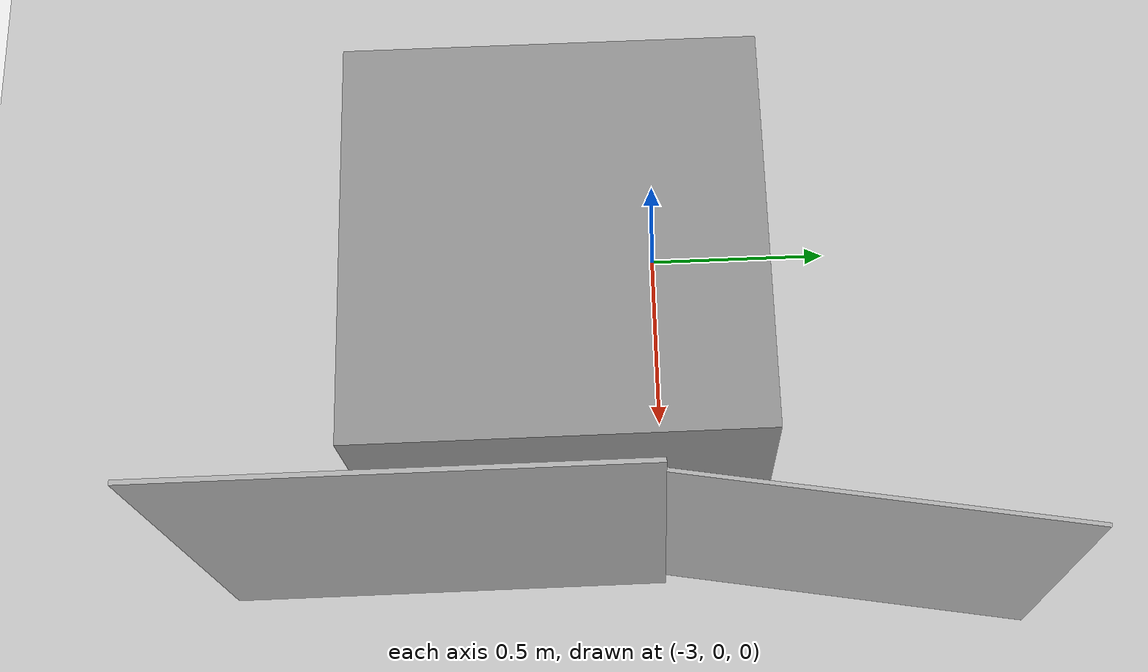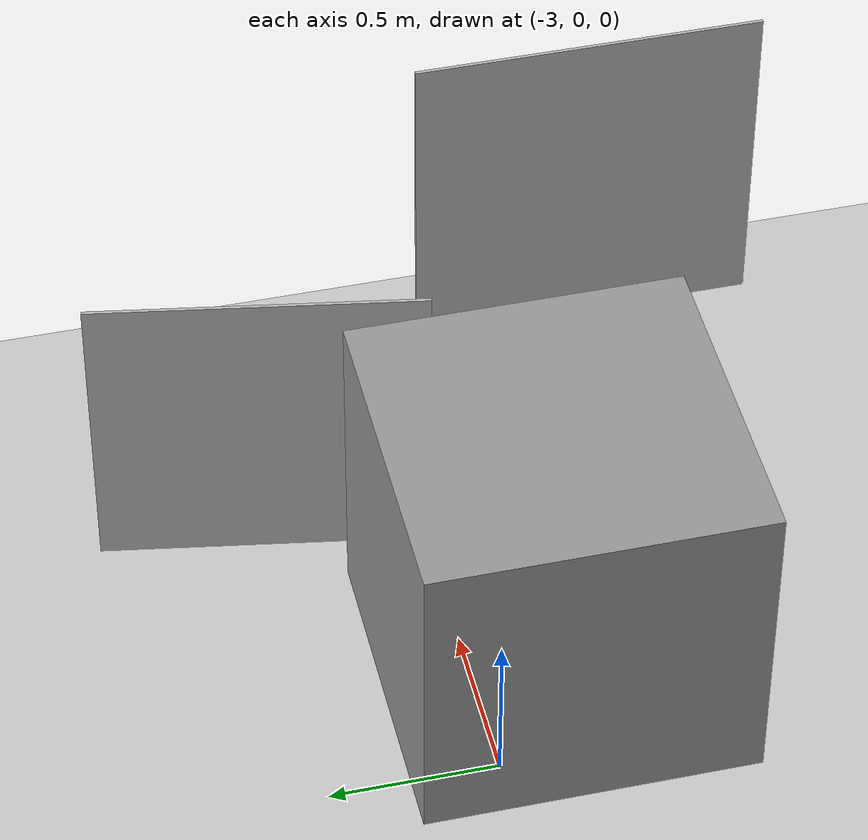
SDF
<sdf version="1.6">
 <world name="default">
  <light name="sun" type="directional">
   <pose>0 0 10 0 -0 0</pose>
   <diffuse>0.8 0.8 0.8 1</diffuse>
   <specular>0.2 0.2 0.2 1</specular>
   <attenuation>
    <range>1000</range>
    <constant>0.9</constant>
    <linear>0.01</linear>
    <quadratic>0.001</quadratic>
   </attenuation>
   <direction>-0.5 0.1 -0.9</direction>
  </light>
  <model name="ground_plane">
   <static>1</static>
   <link name="link">
    <collision name="collision">
     <geometry><plane><normal>0 0 1</normal><size>100 100</size></plane></geometry>
     <surface>
      <contact><collide_bitmask>65535</collide_bitmask></contact>
      <friction><ode><mu>100</mu><mu2>50</mu2></ode></friction>
     </surface>
    </collision>
    <visual name="visual">
     <cast_shadows>0</cast_shadows>
     <geometry><plane><normal>0 0 1</normal><size>100 100</size></plane></geometry>
     <material>
      <script><uri>file://media/materials/scripts/gazebo.material</uri><name>Gazebo/Grey</name></script>
     </material>
    </visual>
   </link>
  </model>
  <gravity>0 0 -9.8</gravity>
  <magnetic_field>6e-06 2.3e-05 -4.2e-05</magnetic_field>
  <atmosphere type="adiabatic"/>
  <physics name="default_physics" default="0" type="ode">
   <max_step_size>0.001</max_step_size>
   <real_time_factor>1</real_time_factor>
   <real_time_update_rate>1000</real_time_update_rate>
  </physics>
  <scene><ambient>0.4 0.4 0.4 1</ambient><background>0.7 0.7 0.7 1</background><shadows>1</shadows></scene>
  <audio><device>default</device></audio>
  <spherical_coordinates>
   <surface_model>EARTH_WGS84</surface_model>
   <latitude_deg>0</latitude_deg>
   <longitude_deg>0</longitude_deg>
   <elevation>0</elevation>
   <heading_deg>0</heading_deg>
  </spherical_coordinates>
  <model name="Apriltag36_11_00000">
   <link name="main">
    <visual name="main_Visual">
     <geometry><box><size>1 1 0.01</size></box></geometry>
     <material>
      <script>
       <uri>model://Apriltag36_11_00000/materials/scripts</uri>
       <uri>model://Apriltag36_11_00000/materials/textures</uri>
       <name>Apriltag36_11_00000</name>
      </script>
     </material>
    </visual>
   </link>
   <static>1</static>
   <pose>-1.89472 -0.511589 1.17698 -3.14159 1.57 -3.14159</pose>
  </model>
  <model name="Apriltag36_11_00001">
   <link name="main">
    <visual name="main_Visual">
     <geometry><box><size>1 1 0.01</size></box></geometry>
     <material>
      <script>
       <uri>model://Apriltag36_11_00001/materials/scripts</uri>
       <uri>model://Apriltag36_11_00001/materials/textures</uri>
       <name>Apriltag36_11_00001</name>
      </script>
     </material>
    </visual>
   </link>
   <static>1</static>
   <pose>-1.98854 0.475425 0.488916 0.172374 1.56195 -1e-06</pose>
  </model>
  <model name="unit_box">
   <pose>-2.65966 -0.239459 0.499995 0 -1e-05 0</pose>
   <link name="link">
    <inertial>
     <mass>1</mass>
     <inertia>
      <ixx>0.166667</ixx>
      <ixy>0</ixy>
      <ixz>0</ixz>
      <iyy>0.166667</iyy>
      <iyz>0</iyz>
      <izz>0.166667</izz>
     </inertia>
    </inertial>
    <collision name="collision"><geometry><box><size>1 1 1</size></box></geometry></collision>
    <visual name="visual">
     <geometry><box><size>1 1 1</size></box></geometry>
     <material>
      <script><name>Gazebo/Grey</name><uri>file://media/materials/scripts/gazebo.material</uri></script>
     </material>
    </visual>
   </link>
  </model>
 </world>
</sdf>
